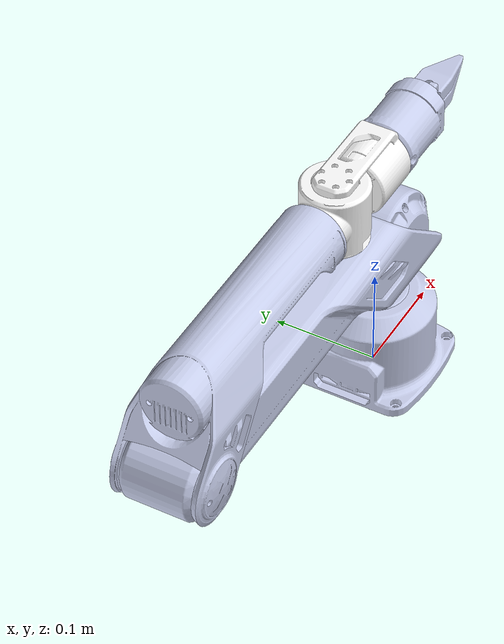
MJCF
<mujoco model="A1_URDF_0607_0028">
  <compiler angle="radian" meshdir="../meshes/"/>

  <asset>
    <mesh name="base_link" file="base_link.STL"/>
    <mesh name="arm_seg1" file="arm_seg1.STL"/>
    <mesh name="arm_seg2" file="arm_seg2.STL"/>
    <mesh name="arm_seg3" file="arm_seg3.STL"/>
    <mesh name="arm_seg4" file="arm_seg4.STL"/>
    <mesh name="arm_seg5" file="arm_seg5.STL"/>
    <mesh name="arm_seg6" file="arm_seg6.STL"/>
    <mesh name="gripper1" file="gripper1.STL"/>
    <mesh name="gripper2" file="gripper2.STL"/>
  </asset>

  <worldbody>
    <geom type="mesh" contype="0" conaffinity="0" group="1" density="0" rgba="0.79216 0.81961 0.93333 1" mesh="base_link"/>
    <geom type="mesh" rgba="0.79216 0.81961 0.93333 1" mesh="base_link"/>
    <body name="arm_seg1" pos="-0.0011147 0 0.0892" quat="-3.67321e-06 0 0 1">
      <inertial pos="-1.4403e-06 -0.00074041 0.056573" quat="0.707084 0.00122867 -0.00107609 0.707127" mass="1.391" diaginertia="0.000708573 0.00058101 0.000445827"/>
      <joint name="arm_joint1" pos="0 0 0" axis="0 0 1" range="-2.8798 2.8798" actuatorfrcrange="-40 40"/>
      <geom type="mesh" contype="0" conaffinity="0" group="1" density="0" rgba="0.79216 0.81961 0.93333 1" mesh="arm_seg1"/>
      <geom type="mesh" rgba="0.79216 0.81961 0.93333 1" mesh="arm_seg1"/>
      <body name="arm_seg2" pos="0 -4e-05 0.0615" quat="0.707105 0.707108 0 0">
        <inertial pos="0.23622 0.016356 9.154e-05" quat="0.484393 0.48518 0.524693 0.504639" mass="1.3" diaginertia="0.00761886 0.00757469 0.000578276"/>
        <joint name="arm_joint2" pos="0 0 0" axis="0 0 1" range="0 3.1415" actuatorfrcrange="-40 40"/>
        <geom type="mesh" contype="0" conaffinity="0" group="1" density="0" rgba="0.79216 0.81961 0.93333 1" mesh="arm_seg2"/>
        <geom type="mesh" rgba="0.79216 0.81961 0.93333 1" mesh="arm_seg2"/>
        <body name="arm_seg3" pos="0.34928 0.02 0" quat="0.707105 0 0 0.707108">
          <inertial pos="0.054443 0.045347 0.00042807" quat="0.595278 0.471808 -0.522016 0.387995" mass="0.818" diaginertia="0.00149749 0.00144877 0.00053598"/>
          <joint name="arm_joint3" pos="0 0 0" axis="0 0 1" range="-3.3161 0" actuatorfrcrange="-27 27"/>
          <geom type="mesh" contype="0" conaffinity="0" group="1" density="0" rgba="0.79216 0.81961 0.93333 1" mesh="arm_seg3"/>
          <geom type="mesh" rgba="0.79216 0.81961 0.93333 1" mesh="arm_seg3"/>
          <body name="arm_seg4" pos="0.07 -0.00395 -4e-05" quat="0.499998 -0.5 0.5 0.500002">
            <inertial pos="7.6256e-07 -0.0021448 0.27415" quat="0.70651 0.0169198 -0.0168252 0.707301" mass="0.816" diaginertia="0.000101779 9.7042e-05 8.44616e-05"/>
            <joint name="arm_joint4" pos="0 0 0" axis="0 0 1" range="-2.8798 2.8798" actuatorfrcrange="-7 7"/>
            <geom type="mesh" contype="0" conaffinity="0" group="1" density="0" rgba="1 1 1 1" mesh="arm_seg4"/>
            <geom type="mesh" rgba="1 1 1 1" mesh="arm_seg4"/>
            <body name="arm_seg5" pos="0 0 0.2776" quat="-2.59734e-06 2.59735e-06 -0.707108 0.707105">
              <inertial pos="-3.9997e-06 -0.05431 0.0034482" quat="0.477398 0.87868 0.00338218 -0.000840949" mass="0.801" diaginertia="0.00011332 0.000109027 7.34689e-05"/>
              <joint name="arm_joint5" pos="0 0 0" axis="0 0 1" range="-1.6581 1.6581" actuatorfrcrange="-7 7"/>
              <geom type="mesh" contype="0" conaffinity="0" group="1" density="0" rgba="1 1 1 1" mesh="arm_seg5"/>
              <geom type="mesh" rgba="1 1 1 1" mesh="arm_seg5"/>
              <body name="arm_seg6" pos="0 -0.1575 -0.00023266" quat="0.707105 0.707108 0 0">
                <inertial pos="1.93719e-06 -8.51884e-08 -0.0260973" quat="0.998261 9.34938e-07 -3.37378e-05 -0.0589521" mass="0.579" diaginertia="0.00050649 0.000503906 7.9941e-05"/>
                <joint name="arm_joint6" pos="0 0 0" axis="0 0 1" range="-2.8798 2.8798" actuatorfrcrange="-7 7"/>
                <geom type="mesh" contype="0" conaffinity="0" group="1" density="0" rgba="0.79216 0.81961 0.93333 1" mesh="arm_seg6"/>
                <geom type="mesh" rgba="0.79216 0.81961 0.93333 1" mesh="arm_seg6"/>
                <geom pos="0.014 -0.011914 0.003125" quat="-0.499979 0.500023 0.499977 0.500021" type="mesh" contype="0" conaffinity="0" group="1" density="0" rgba="0.79216 0.81961 0.93333 1" mesh="gripper1"/>
                <geom pos="0.014 -0.011914 0.003125" quat="-0.499979 0.500023 0.499977 0.500021" type="mesh" rgba="0.79216 0.81961 0.93333 1" mesh="gripper1"/>
                <geom pos="-0.014 0.011914 0.003125" quat="0.500025 0.499977 -0.500023 0.499975" type="mesh" contype="0" conaffinity="0" group="1" density="0" rgba="0.79216 0.81961 0.93333 1" mesh="gripper2"/>
                <geom pos="-0.014 0.011914 0.003125" quat="0.500025 0.499977 -0.500023 0.499975" type="mesh" rgba="0.79216 0.81961 0.93333 1" mesh="gripper2"/>
              </body>
            </body>
          </body>
        </body>
      </body>
    </body>
  </worldbody>
</mujoco>
